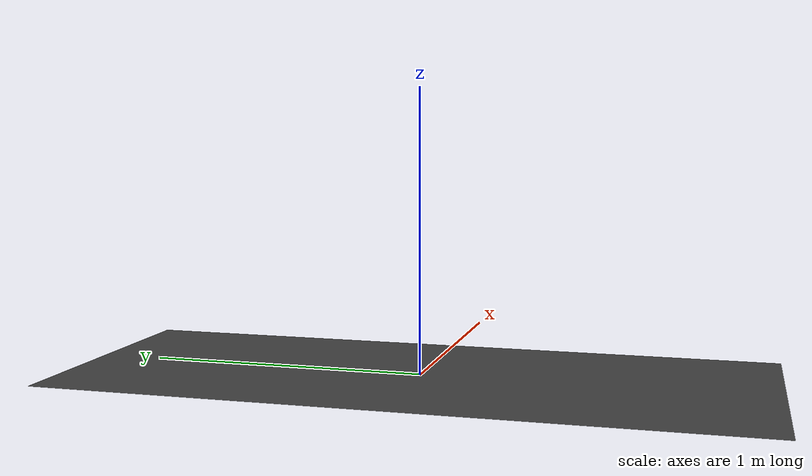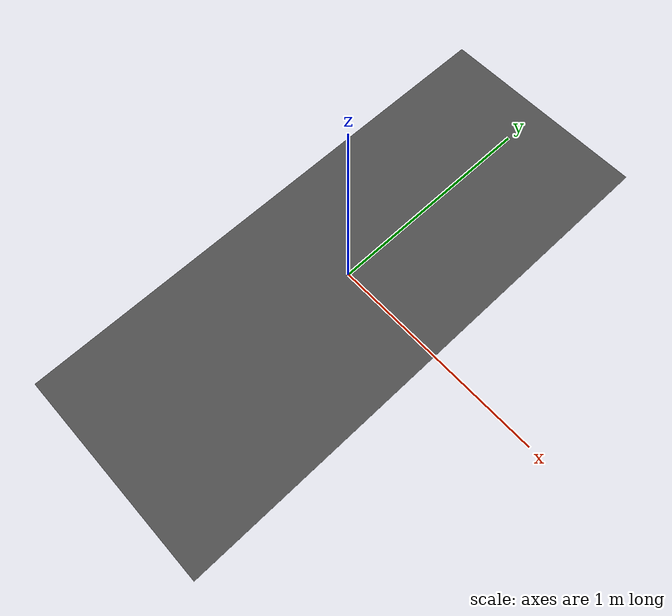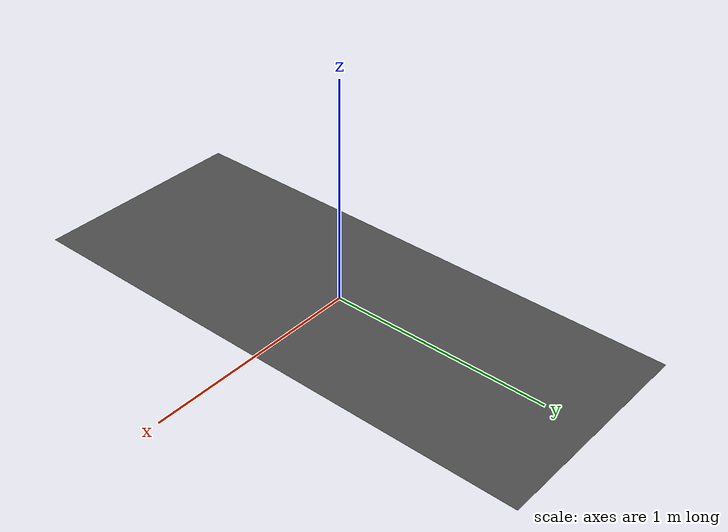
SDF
<?xml version="1.0"?>
<sdf version="1.4">
  <model name="twister_table">
    <static>true</static>
    <link name="link">
      <collision name="collision">
        <geometry>
          <plane>
            <normal>0 0 1</normal>
            <size>1.0 2.45</size>
          </plane>
        </geometry>
        <surface>
          <friction>
            <ode>
              <mu>100</mu>
              <mu2>50</mu2>
            </ode>
          </friction>
        </surface>
      </collision>
      <visual name="visual">
        <cast_shadows>false</cast_shadows>
        <geometry>
          <plane>
            <normal>0 0 1</normal>
            <size>1.0 2.45</size>
          </plane>
        </geometry>
        <material>
          <script>
            <uri>file://media/materials/scripts/gazebo.material</uri>
            <name>Gazebo/DarkGrey</name>
          </script>
        </material>
      </visual>
    </link>
  </model>
</sdf>
